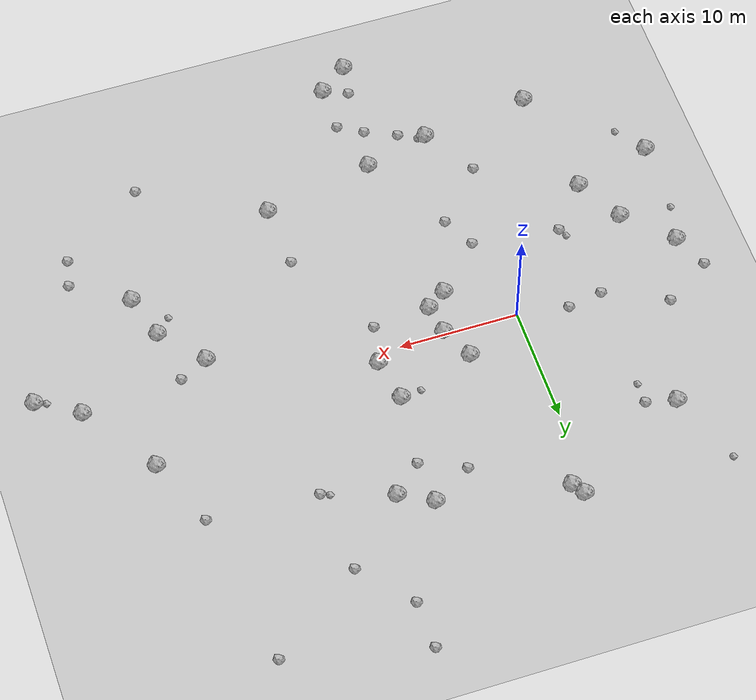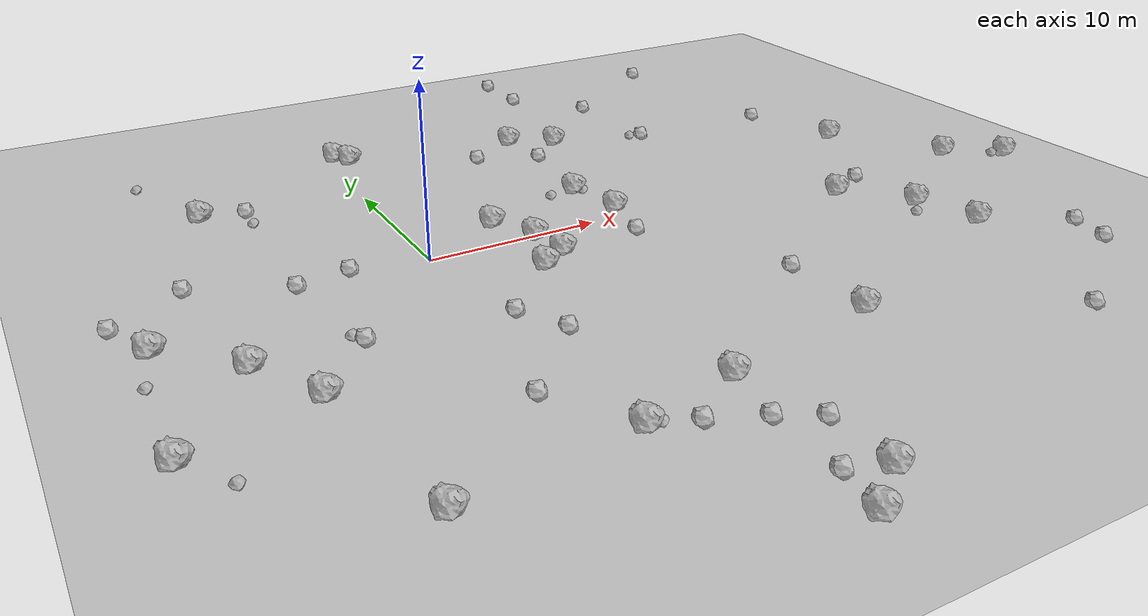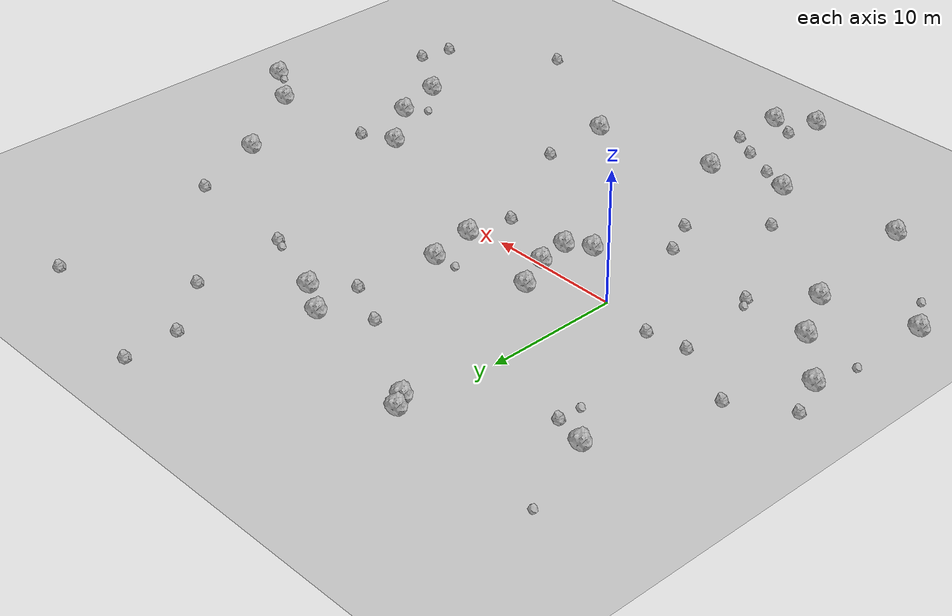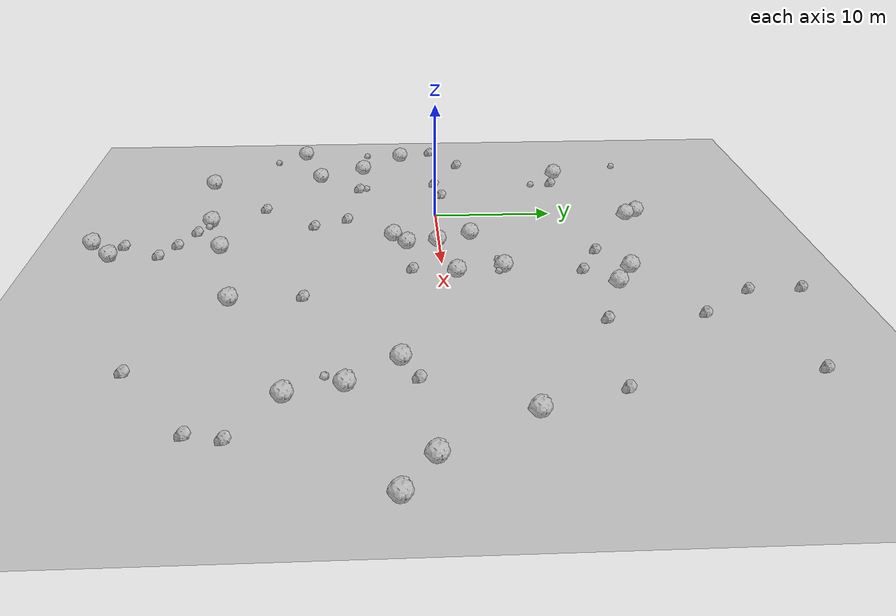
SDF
<sdf version="1.6">
 <world name="default">
  <include><uri>model://custom_ground</uri></include>
  <include><uri>model://sun</uri></include>
  <model name="rock1_0_0">
   <include><uri>model://rock1</uri><pose>14.659894395524752 13.086769196592634 0.5 0 0 0</pose></include>
  </model>
  <model name="rock1_0_1">
   <include><uri>model://rock1</uri><pose>6.6717406706876226 -2.6753013017908884 0.5 0 0 0</pose></include>
  </model>
  <model name="rock1_0_2">
   <include><uri>model://rock1</uri><pose>-7.783648668982915 -20.286699873148393 0.5 0 0 0</pose></include>
  </model>
  <model name="rock1_0_3">
   <include><uri>model://rock1</uri><pose>5.02865408801981 -3.7733653364635593 0.5 0 0 0</pose></include>
  </model>
  <model name="rock1_0_4">
   <include><uri>model://rock1</uri><pose>-9.127061839912995 -10.409201131706435 0.5 0 0 0</pose></include>
  </model>
  <model name="rock1_0_5">
   <include><uri>model://rock1</uri><pose>29.358810958231977 -10.968042091290958 0.5 0 0 0</pose></include>
  </model>
  <model name="rock1_0_6">
   <include><uri>model://rock1</uri><pose>12.214939148865056 1.0368312488793734 0.5 0 0 0</pose></include>
  </model>
  <model name="rock1_0_7">
   <include><uri>model://rock1</uri><pose>39.387660919335914 -3.903846493488821 0.5 0 0 0</pose></include>
  </model>
  <model name="rock1_0_8">
   <include><uri>model://rock1</uri><pose>31.727976238657057 4.65441083812064 0.5 0 0 0</pose></include>
  </model>
  <model name="rock1_0_9">
   <include><uri>model://rock1</uri><pose>6.28757067367448 -0.1546790672375593 0.5 0 0 0</pose></include>
  </model>
  <model name="rock1_0_10">
   <include><uri>model://rock1</uri><pose>11.991279962522999 14.571357840577477 0.5 0 0 0</pose></include>
  </model>
  <model name="rock1_0_11">
   <include><uri>model://rock1</uri><pose>35.98273822967699 -1.7755476181204557 0.5 0 0 0</pose></include>
  </model>
  <model name="rock1_0_12">
   <include><uri>model://rock1</uri><pose>-15.744508309181676 -12.180375680966026 0.5 0 0 0</pose></include>
  </model>
  <model name="rock1_0_13">
   <include><uri>model://rock1</uri><pose>28.259204671300097 -7.158858658876838 0.5 0 0 0</pose></include>
  </model>
  <model name="rock1_0_14">
   <include><uri>model://rock1</uri><pose>16.22547001362966 -15.949768615086333 0.5 0 0 0</pose></include>
  </model>
  <model name="rock1_0_15">
   <include><uri>model://rock1</uri><pose>11.510901888169734 4.730181539335177 0.5 0 0 0</pose></include>
  </model>
  <model name="rock1_0_16">
   <include><uri>model://rock1</uri><pose>1.4076320895260928 16.495786039047182 0.5 0 0 0</pose></include>
  </model>
  <model name="rock1_0_17">
   <include><uri>model://rock1</uri><pose>8.144847817143408 -26.434898442561575 0.5 0 0 0</pose></include>
  </model>
  <model name="rock1_0_18">
   <include><uri>model://rock1</uri><pose>-14.854611152699642 -2.770304634019073 0.5 0 0 0</pose></include>
  </model>
  <model name="rock1_0_19">
   <include><uri>model://rock1</uri><pose>25.22441599119285 -3.5841132620598692 0.5 0 0 0</pose></include>
  </model>
  <model name="rock1_0_20">
   <include><uri>model://rock1</uri><pose>4.987729896972674 2.629256701547206 0.5 0 0 0</pose></include>
  </model>
  <model name="rock1_0_21">
   <include><uri>model://rock1</uri><pose>-9.218060297735992 11.837069047632049 0.5 0 0 0</pose></include>
  </model>
  <model name="rock1_0_22">
   <include><uri>model://rock1</uri><pose>5.682481298144076 -28.31901193714169 0.5 0 0 0</pose></include>
  </model>
  <model name="rock1_0_23">
   <include><uri>model://rock1</uri><pose>1.387982084525646 -19.251477448239942 0.5 0 0 0</pose></include>
  </model>
  <model name="rock1_0_24">
   <include><uri>model://rock1</uri><pose>0.7323153136306466 17.51631770109107 0.5 0 0 0</pose></include>
  </model>
  <model name="rock1_0_25">
   <include><uri>model://rock1</uri><pose>-11.272184860528307 -6.410313886063069 0.5 0 0 0</pose></include>
  </model>
  <model name="rock1_0_26">
   <include><uri>model://rock1</uri><pose>6.894922634666628 -17.807170712664735 0.5 0 0 0</pose></include>
  </model>
  <model name="rock2_0_0">
   <include><uri>model://rock2</uri><pose>33.2902566627635 -16.35165401235166 0.3 0 0 0</pose></include>
  </model>
  <model name="rock2_0_1">
   <include><uri>model://rock2</uri><pose>-4.203114143516199 0.7443169295683987 0.3 0 0 0</pose></include>
  </model>
  <model name="rock2_0_2">
   <include><uri>model://rock2</uri><pose>16.19849833996114 22.46062344433372 0.3 0 0 0</pose></include>
  </model>
  <model name="rock2_0_3">
   <include><uri>model://rock2</uri><pose>33.83948262465287 -13.965435966760232 0.3 0 0 0</pose></include>
  </model>
  <model name="rock2_0_4">
   <include><uri>model://rock2</uri><pose>26.1181998507615 -21.383714463631698 0.3 0 0 0</pose></include>
  </model>
  <model name="rock2_0_5">
   <include><uri>model://rock2</uri><pose>27.622352544745098 23.82097902897919 0.3 0 0 0</pose></include>
  </model>
  <model name="rock2_0_6">
   <include><uri>model://rock2</uri><pose>11.47352756000041 -2.3603357597451335 0.3 0 0 0</pose></include>
  </model>
  <model name="rock2_0_7">
   <include><uri>model://rock2</uri><pose>15.912147227717433 -10.547030572665616 0.3 0 0 0</pose></include>
  </model>
  <model name="rock2_0_8">
   <include><uri>model://rock2</uri><pose>16.072647991342585 26.551086276850647 0.3 0 0 0</pose></include>
  </model>
  <model name="rock2_0_9">
   <include><uri>model://rock2</uri><pose>29.425035100178718 10.544171782036294 0.3 0 0 0</pose></include>
  </model>
  <model name="rock2_0_10">
   <include><uri>model://rock2</uri><pose>-12.261219951652592 2.701796059175699 0.3 0 0 0</pose></include>
  </model>
  <model name="rock2_0_11">
   <include><uri>model://rock2</uri><pose>-1.3816596623810966 -14.829860122566823 0.3 0 0 0</pose></include>
  </model>
  <model name="rock2_0_12">
   <include><uri>model://rock2</uri><pose>12.205077876320217 10.833912981000779 0.3 0 0 0</pose></include>
  </model>
  <model name="rock2_0_13">
   <include><uri>model://rock2</uri><pose>-7.157438648566131 0.2426659109617333 0.3 0 0 0</pose></include>
  </model>
  <model name="rock2_0_14">
   <include><uri>model://rock2</uri><pose>6.0895616583157555 -25.632871217310424 0.3 0 0 0</pose></include>
  </model>
  <model name="rock2_0_15">
   <include><uri>model://rock2</uri><pose>19.79463295827012 18.244303556286923 0.3 0 0 0</pose></include>
  </model>
  <model name="rock2_0_16">
   <include><uri>model://rock2</uri><pose>3.5130374314168016 -20.112148829223393 0.3 0 0 0</pose></include>
  </model>
  <model name="rock2_0_17">
   <include><uri>model://rock2</uri><pose>8.123393088795986 -22.518744557812788 0.3 0 0 0</pose></include>
  </model>
  <model name="rock2_0_18">
   <include><uri>model://rock2</uri><pose>6.110491559894882 -21.312689119829464 0.3 0 0 0</pose></include>
  </model>
  <model name="rock2_0_19">
   <include><uri>model://rock2</uri><pose>2.6249820106218706 -10.412431487218356 0.3 0 0 0</pose></include>
  </model>
  <model name="rock2_0_20">
   <include><uri>model://rock2</uri><pose>27.62897781815299 -2.438800583881733 0.3 0 0 0</pose></include>
  </model>
  <model name="rock2_0_21">
   <include><uri>model://rock2</uri><pose>-6.059093960260482 -6.715530731663197 0.3 0 0 0</pose></include>
  </model>
  <model name="rock2_0_22">
   <include><uri>model://rock2</uri><pose>20.30865073213758 11.09892670647259 0.3 0 0 0</pose></include>
  </model>
  <model name="rock2_0_23">
   <include><uri>model://rock2</uri><pose>8.577178416683484 12.476705422977211 0.3 0 0 0</pose></include>
  </model>
  <model name="rock2_0_24">
   <include><uri>model://rock2</uri><pose>1.2154787757873962 -7.654187189357518 0.3 0 0 0</pose></include>
  </model>
  <model name="rock2_0_25">
   <include><uri>model://rock2</uri><pose>-6.808029682766319 11.187501312737773 0.3 0 0 0</pose></include>
  </model>
  <model name="rock2_0_26">
   <include><uri>model://rock2</uri><pose>-16.192526909169295 0.19206881617170524 0.3 0 0 0</pose></include>
  </model>
  <model name="rock3_0_0">
   <include><uri>model://rock3</uri><pose>-11.62991971184699 17.963360070035662 0.2 0 0 0</pose></include>
  </model>
  <model name="rock3_0_1">
   <include><uri>model://rock3</uri><pose>19.55302938564219 11.347479104792285 0.2 0 0 0</pose></include>
  </model>
  <model name="rock3_0_2">
   <include><uri>model://rock3</uri><pose>2.0033935875181186 -19.345895198276075 0.2 0 0 0</pose></include>
  </model>
  <model name="rock3_0_3">
   <include><uri>model://rock3</uri><pose>11.844282494440176 4.337860020001116 0.2 0 0 0</pose></include>
  </model>
  <model name="rock3_0_4">
   <include><uri>model://rock3</uri><pose>26.944588722784516 -8.497453853792198 0.2 0 0 0</pose></include>
  </model>
  <model name="rock3_0_5">
   <include><uri>model://rock3</uri><pose>38.39187446832932 -3.690025062568207 0.2 0 0 0</pose></include>
  </model>
  <model name="rock3_0_6">
   <include><uri>model://rock3</uri><pose>-6.46999572567948 -6.056616681075724 0.2 0 0 0</pose></include>
  </model>
  <model name="rock3_0_7">
   <include><uri>model://rock3</uri><pose>9.720964398680785 4.443946506740062 0.2 0 0 0</pose></include>
  </model>
  <model name="rock3_0_8">
   <include><uri>model://rock3</uri><pose>-6.870574026676099 9.318665565174364 0.2 0 0 0</pose></include>
  </model>
  <model name="rock3_0_9">
   <include><uri>model://rock3</uri><pose>-14.06299559384119 -14.805760054507806 0.2 0 0 0</pose></include>
  </model>
  <model name="rock3_0_10">
   <include><uri>model://rock3</uri><pose>-15.701658018446384 -6.052372089434844 0.2 0 0 0</pose></include>
  </model>
 </world>
</sdf>
